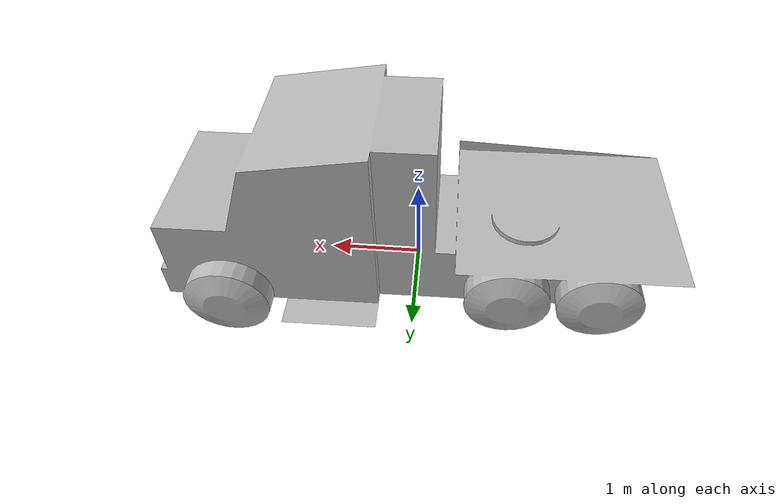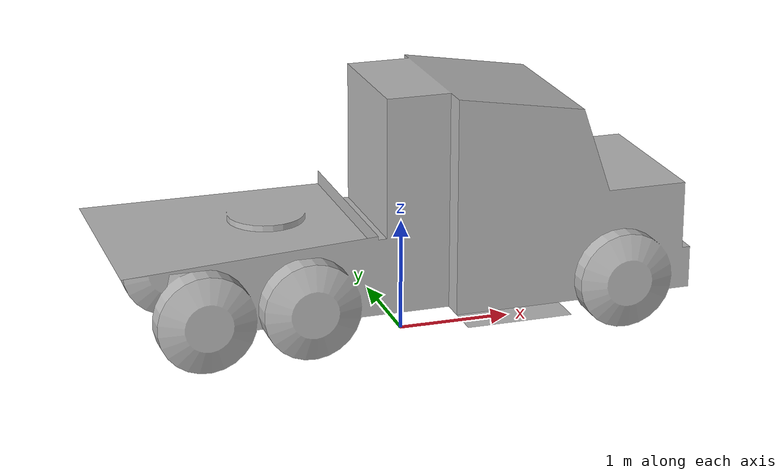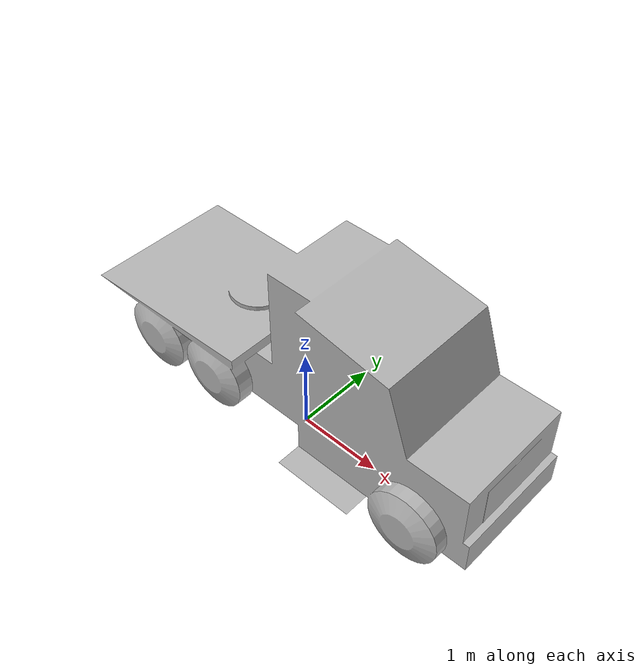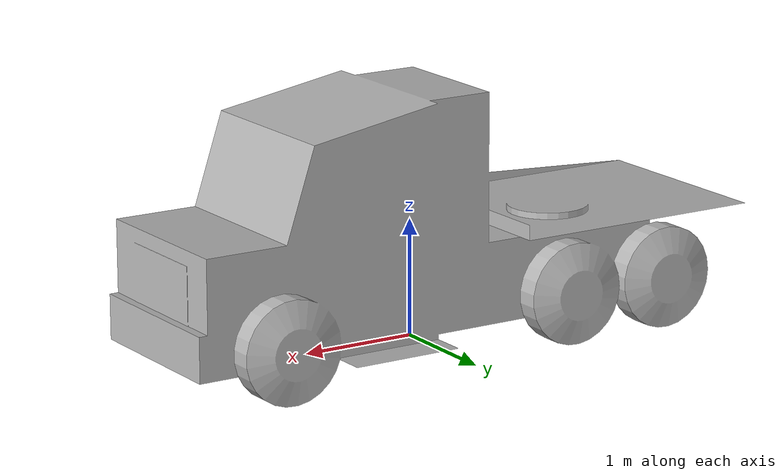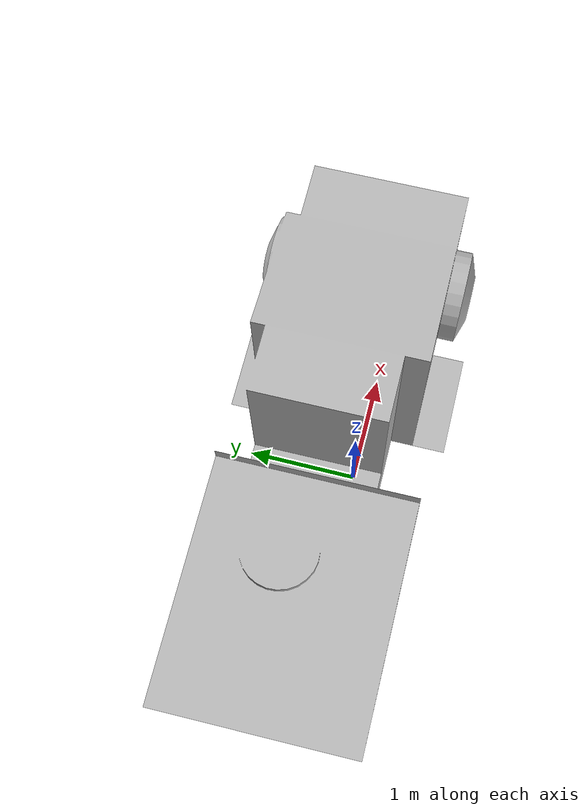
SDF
<?xml version="1.0" ?>
<sdf version="1.6">
  <model name="fuelTruck">
    <static>true</static>
    <link name="link">
      <collision name="collision">
        <geometry>
          <mesh>
            <scale>1 1 1</scale>
            <uri>model://fuel_truck_chassis/meshes/chassis.stl</uri>
          </mesh>
        </geometry>
      </collision>
      <visual name="visual">
        <geometry>
          <mesh>
            <scale>1 1 1</scale>
            <uri>model://fuel_truck_chassis/meshes/chassis.stl</uri>
          </mesh>
        </geometry>
      </visual>
    </link>
  </model>
</sdf>
